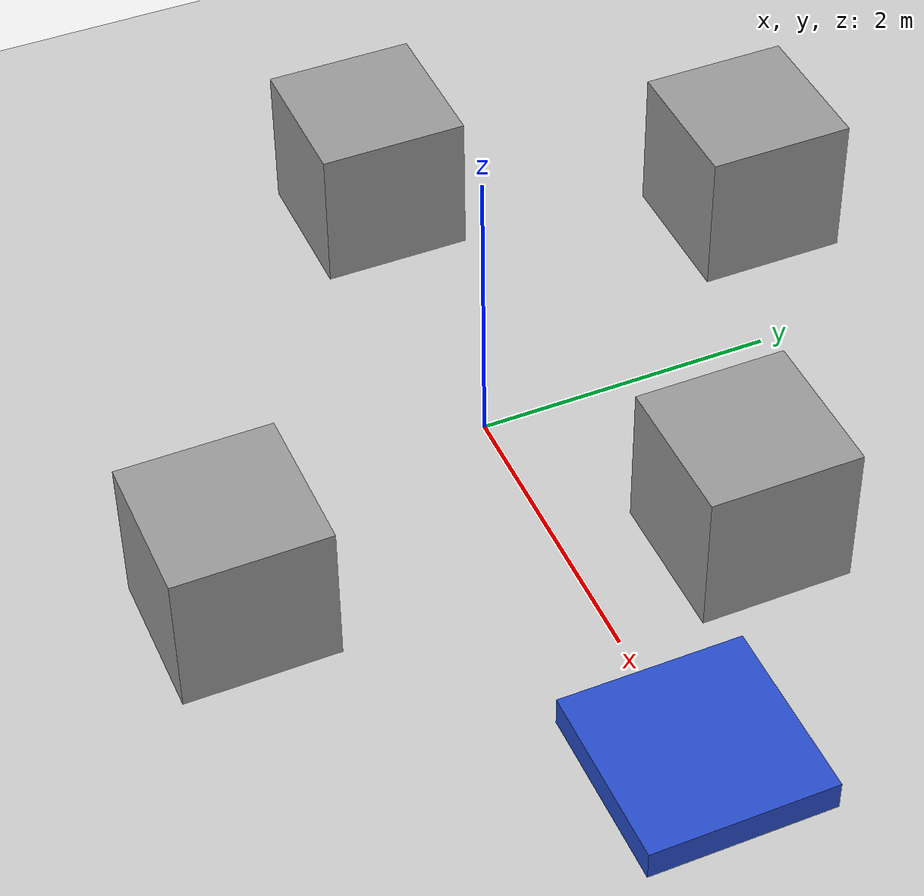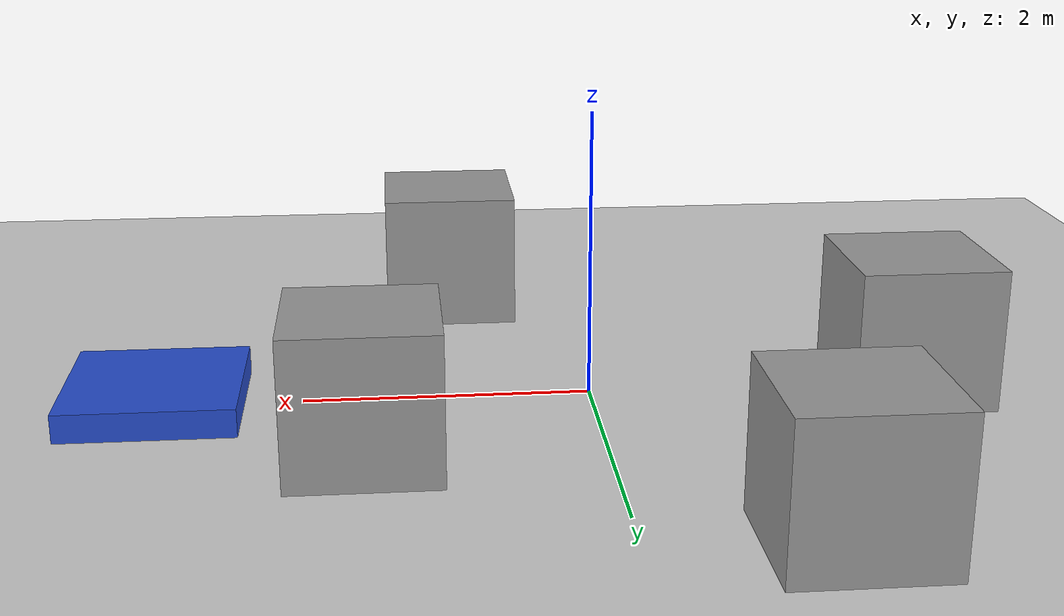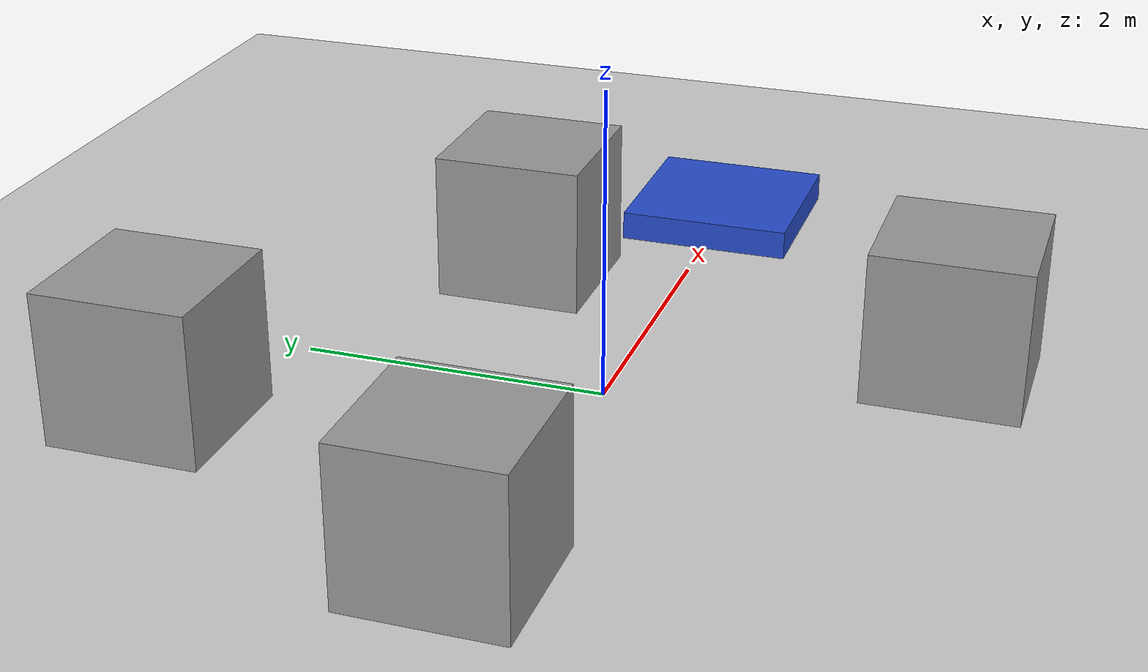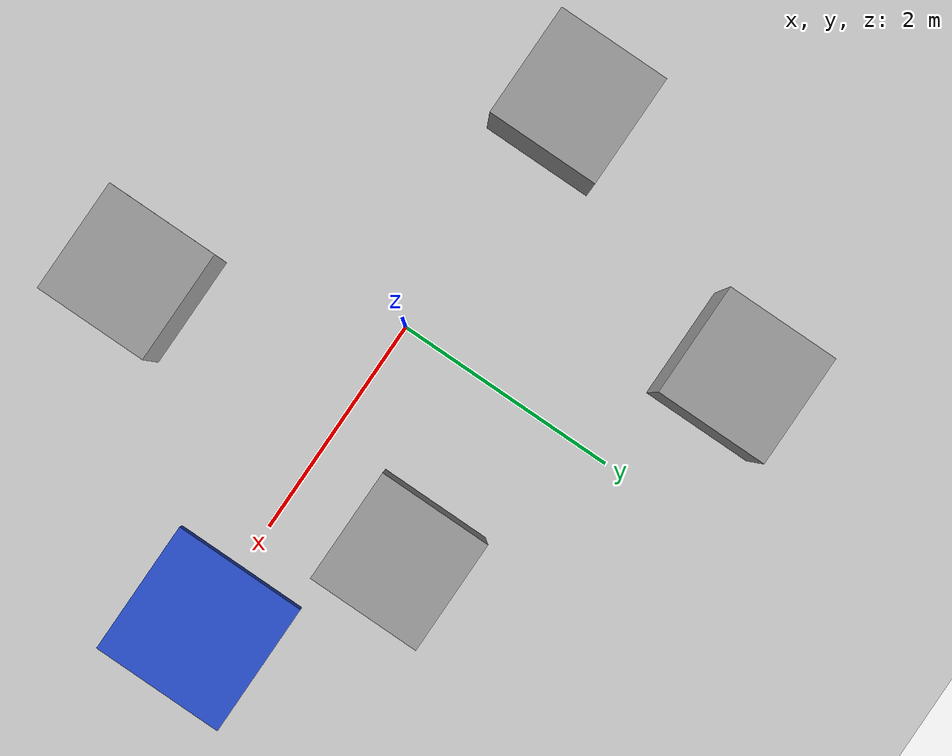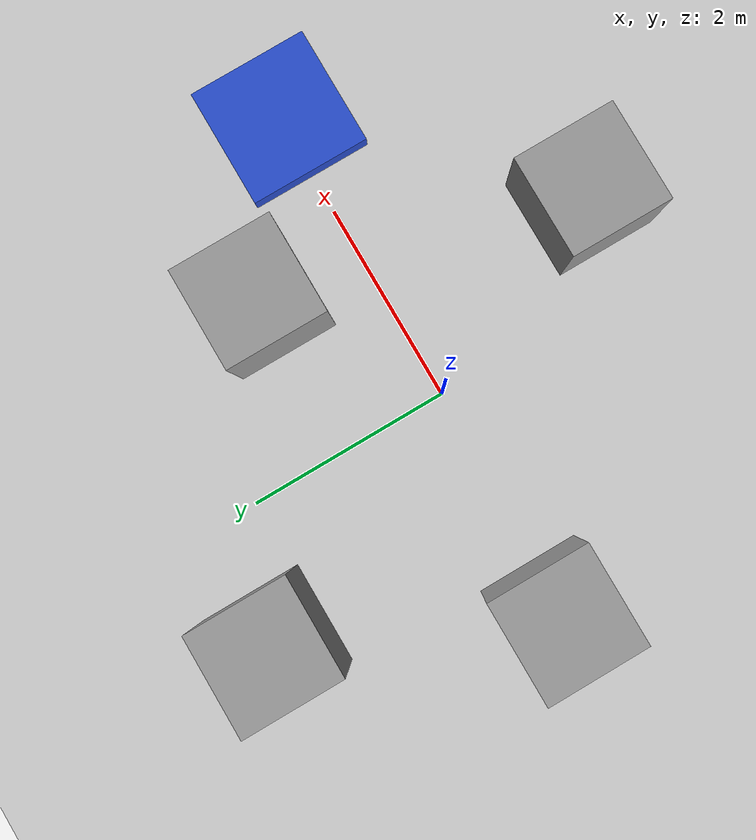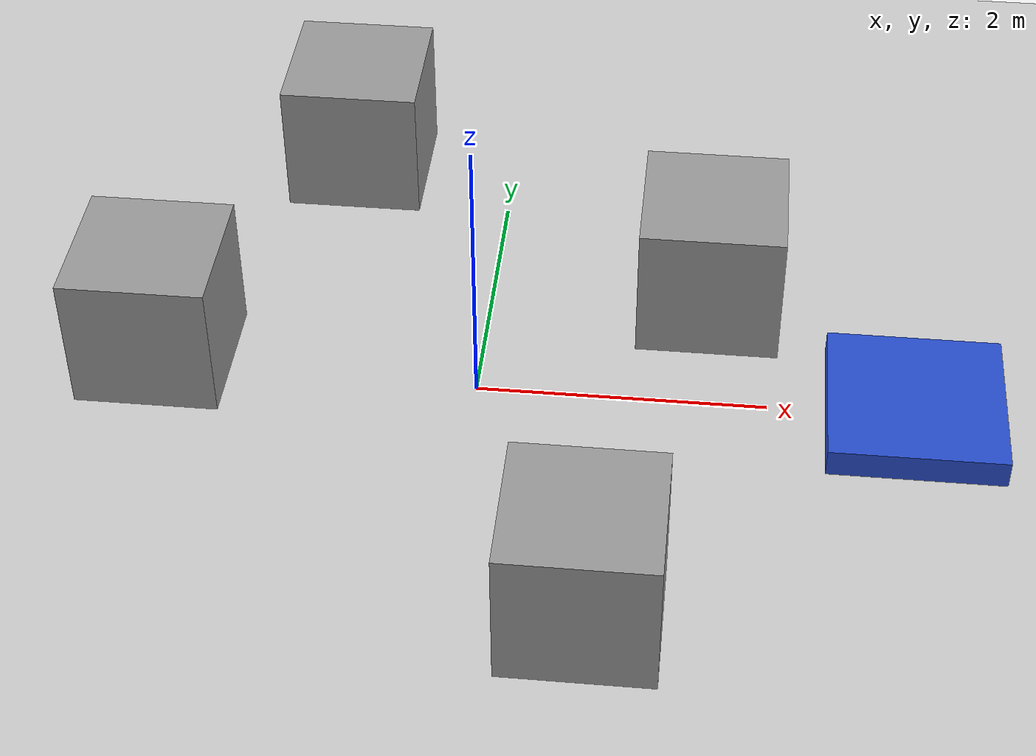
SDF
<sdf version="1.7">
 <world name="block_world">
  <physics name="default_physics" type="ode">
   <max_step_size>0.001</max_step_size>
   <real_time_factor>1</real_time_factor>
   <real_time_update_rate>1000</real_time_update_rate>
  </physics>
  <light name="sun" type="directional">
   <pose>0 0 10 0 -0 0</pose>
   <diffuse>0.8 0.8 0.8 1</diffuse>
   <specular>0.2 0.2 0.2 1</specular>
   <direction>-0.5 0.5 -1</direction>
   <attenuation><range>10</range></attenuation>
   <spot><inner_angle>0</inner_angle><outer_angle>0</outer_angle><falloff>0</falloff></spot>
  </light>
  <model name="ground_plane">
   <static>1</static>
   <link name="link">
    <collision name="collision">
     <geometry><plane><normal>0 0 1</normal><size>100 100</size></plane></geometry>
    </collision>
    <visual name="visual">
     <geometry><plane><normal>0 0 1</normal><size>100 100</size></plane></geometry>
     <material>
      <script><uri>file://media/materials/scripts/gazebo.material</uri><name>Gazebo/Gray</name></script>
     </material>
    </visual>
   </link>
  </model>
  <model name="target_block">
   <static>1</static>
   <link name="block_link">
    <pose>3 0 0.1 0 -0 0</pose>
    <visual name="block_visual">
     <geometry><box><size>1.2 1.2 0.2</size></box></geometry>
     <material>
      <script><uri>file://media/materials/scripts/gazebo.material</uri><name>Gray/Blue</name></script>
     </material>
    </visual>
    <collision name="block_collision"><geometry><box><size>1.2 1.2 0.2</size></box></geometry></collision>
   </link>
  </model>
  <gravity>0 0 -9.8</gravity>
  <magnetic_field>6e-06 2.3e-05 -4.2e-05</magnetic_field>
  <atmosphere type="adiabatic"/>
  <scene><ambient>0.4 0.4 0.4 1</ambient><background>0.7 0.7 0.7 1</background><shadows>1</shadows></scene>
  <spherical_coordinates>
   <surface_model>EARTH_WGS84</surface_model>
   <latitude_deg>0</latitude_deg>
   <longitude_deg>0</longitude_deg>
   <elevation>0</elevation>
   <heading_deg>0</heading_deg>
  </spherical_coordinates>
  <model name="unit_box">
   <pose>0.897894 -2.02705 0.499995 -1e-05 -0 -0</pose>
   <link name="link">
    <inertial>
     <mass>1</mass>
     <inertia>
      <ixx>0.166667</ixx>
      <ixy>0</ixy>
      <ixz>0</ixz>
      <iyy>0.166667</iyy>
      <iyz>0</iyz>
      <izz>0.166667</izz>
     </inertia>
    </inertial>
    <collision name="collision"><geometry><box><size>1 1 1</size></box></geometry></collision>
    <visual name="visual">
     <geometry><box><size>1 1 1</size></box></geometry>
     <material>
      <script><name>Gazebo/Grey</name><uri>file://media/materials/scripts/gazebo.material</uri></script>
     </material>
    </visual>
   </link>
  </model>
  <model name="unit_box_0">
   <pose>1.56486 1.02318 0.499995 0 1e-05 0</pose>
   <link name="link">
    <inertial>
     <mass>1</mass>
     <inertia>
      <ixx>0.166667</ixx>
      <ixy>0</ixy>
      <ixz>0</ixz>
      <iyy>0.166667</iyy>
      <iyz>0</iyz>
      <izz>0.166667</izz>
     </inertia>
    </inertial>
    <collision name="collision"><geometry><box><size>1 1 1</size></box></geometry></collision>
    <visual name="visual">
     <geometry><box><size>1 1 1</size></box></geometry>
     <material>
      <script><name>Gazebo/Grey</name><uri>file://media/materials/scripts/gazebo.material</uri></script>
     </material>
    </visual>
   </link>
  </model>
  <model name="unit_box_1">
   <pose>-2.24148 0.118701 0.499995 -1e-05 -0 0</pose>
   <link name="link">
    <inertial>
     <mass>1</mass>
     <inertia>
      <ixx>0.166667</ixx>
      <ixy>0</ixy>
      <ixz>0</ixz>
      <iyy>0.166667</iyy>
      <iyz>0</iyz>
      <izz>0.166667</izz>
     </inertia>
    </inertial>
    <collision name="collision"><geometry><box><size>1 1 1</size></box></geometry></collision>
    <visual name="visual">
     <geometry><box><size>1 1 1</size></box></geometry>
     <material>
      <script><name>Gazebo/Grey</name><uri>file://media/materials/scripts/gazebo.material</uri></script>
     </material>
    </visual>
   </link>
  </model>
  <model name="unit_box_2">
   <pose>-1.17571 2.44813 0.5 0 -0 0</pose>
   <link name="link">
    <inertial>
     <mass>1</mass>
     <inertia>
      <ixx>0.166667</ixx>
      <ixy>0</ixy>
      <ixz>0</ixz>
      <iyy>0.166667</iyy>
      <iyz>0</iyz>
      <izz>0.166667</izz>
     </inertia>
    </inertial>
    <collision name="collision"><geometry><box><size>1 1 1</size></box></geometry></collision>
    <visual name="visual">
     <geometry><box><size>1 1 1</size></box></geometry>
     <material>
      <script><name>Gazebo/Grey</name><uri>file://media/materials/scripts/gazebo.material</uri></script>
     </material>
    </visual>
   </link>
  </model>
 </world>
</sdf>
